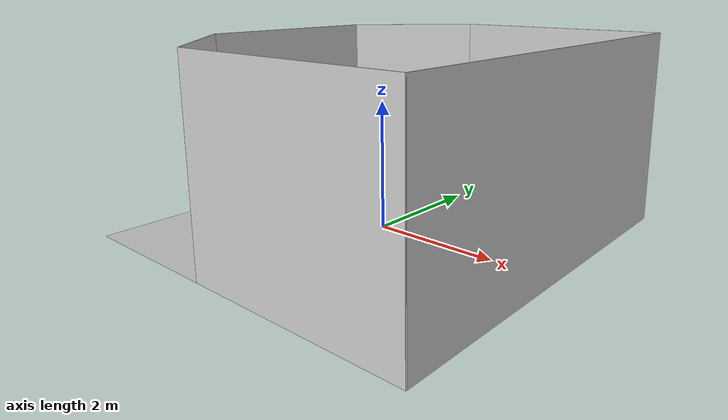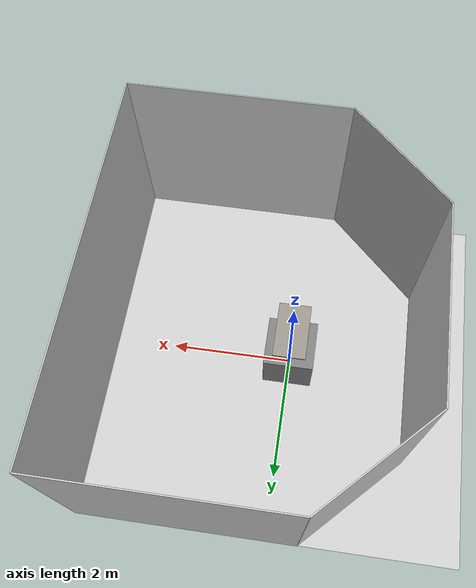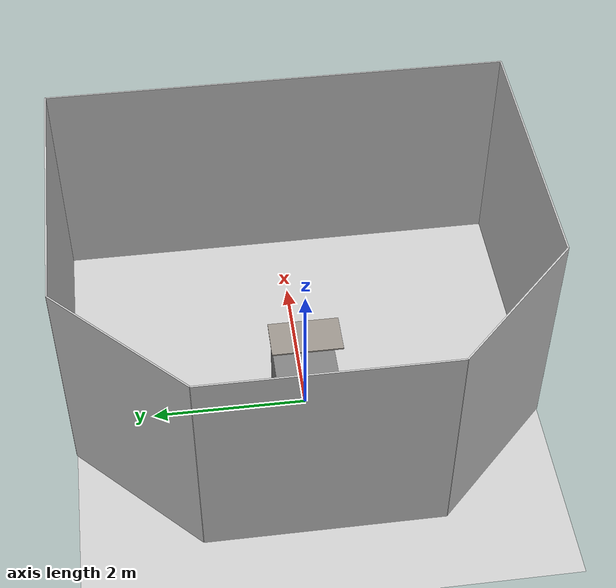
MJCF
<mujoco model="narrow_gap_arena">
    <asset>
        <!-- Room and table textures -->
        <texture builtin="gradient" height="256" rgb1=".9 .9 1." rgb2=".2 .3 .4" type="skybox" width="256"/>
        <texture file="../models/assets/textures/light-gray-floor-tile.png" type="2d" name="texplane"/>
        <material name="floorplane" reflectance="0.01" shininess="0.0" specular="0.0" texrepeat="2 2" texture="texplane" texuniform="true"/>
        <!-- ceramic table texture and material-->
        <texture file="../models/assets/textures/ceramic.png" type="cube" name="tex-ceramic"/>
        <material name="table_ceramic" reflectance="0.0" shininess="0.0" specular="0.2" texrepeat="1 1" texture="tex-ceramic" />
        <!-- steel legs -->
        <texture file="../models/assets/textures/steel-brushed.png" type="cube" name="tex-steel-brushed"/>
        <material name="table_legs_metal" reflectance="0.8" shininess="0.8" texrepeat="1 1" texture="tex-steel-brushed" />
        <!-- plaster walls -->
        <texture file="../models/assets/textures/light-gray-plaster.png" type="2d" name="tex-light-gray-plaster"/>
        <material name="walls_mat" reflectance="0.0" shininess="0.1" specular="0.1" texrepeat="3 3" texture="tex-light-gray-plaster" texuniform="true" />
        <!-- added table texture and material for domain randomization -->
        <texture  name="textable" builtin="flat" height="512" width="512" rgb1="0.5 0.5 0.5" rgb2="0.5 0.5 0.5"/>
        <material name="table_mat" texture="textable" />
        <!-- Cube and shelf textures -->
        <texture file="../models/assets/textures/metal.png" type="cube" name="metal" />
        <material name="MatMetal" texture="metal" specular="1" shininess="0.3" rgba="0.8 0.8 0.8 1" />
        <material name="MatClearMetal" texture="metal" specular="0.4" shininess="0.1" rgba="0.8 0.8 0.8 0.5"/>
    </asset>

    <worldbody>
        <!-- Floor -->
        <geom condim="3" group="1" material="floorplane" name="floor" pos="0 0 0" size="3 3 .125" type="plane"/>
        <!-- Walls (visual only) -->
        <geom pos="-1.25 2.25 1.5" quat="0.6532815 0.6532815 0.2705981 0.2705981" size="1.06 1.5 0.01" type="box" conaffinity="0" contype="0" group="1" name="wall_leftcorner_visual" material="walls_mat"/>
        <geom pos="-1.25 -2.25 1.5" quat="0.6532815 0.6532815 -0.2705981 -0.2705981" size="1.06 1.5 0.01" type="box" conaffinity="0" contype="0" group="1" name="wall_rightcorner_visual" material="walls_mat"/>
        <geom pos="1.25 3 1.5" quat="0.7071 0.7071 0 0" size="1.75 1.5 0.01" type="box" conaffinity="0" contype="0" group="1" name="wall_left_visual" material="walls_mat"/>
        <geom pos="1.25 -3 1.5" quat="0.7071 -0.7071 0 0" size="1.75 1.5 0.01" type="box" conaffinity="0" contype="0" group="1" name="wall_right_visual" material="walls_mat"/>
        <geom pos="-2 0 1.5" quat="0.5 0.5 0.5 0.5" size="1.5 1.5 0.01" type="box" conaffinity="0" contype="0" group="1" name="wall_rear_visual" material="walls_mat"/>
        <geom pos="3 0 1.5" quat="0.5 0.5 -0.5 -0.5" size="3 1.5 0.01" type="box" conaffinity="0" contype="0" group="1" name="wall_front_visual" material="walls_mat"/>
        <!-- Table body -->
        <body name="table" pos="0 0 0.4">
            <geom pos="0 0 0" size="0.4 0.4 0.4" type="box" group="0" name="table_collision" friction="0.5 0.005 0.0001"/>
            <geom pos="0 0 0" size="0.4 0.4 0.4" type="box" conaffinity="0" contype="0" group="1" name="table_visual" material="table_ceramic"/>
            <site pos="0 0 0.4" name="table_top" size="0.001 0.001 0.001" rgba="0 0 0 0"/>
            <!-- Legs (visual only) -->
            <geom pos="0 0 0" size="0.05 0.1" type="cylinder" conaffinity="0" contype="0" group="1" name="table_leg1_visual" material="table_legs_metal"/>
            <geom pos="0 0 0" size="0.05 0.1" type="cylinder" conaffinity="0" contype="0" group="1" name="table_leg2_visual" material="table_legs_metal"/>
            <geom pos="0 0 0" size="0.05 0.1" type="cylinder" conaffinity="0" contype="0" group="1" name="table_leg3_visual" material="table_legs_metal"/>
            <geom pos="0 0 0" size="0.05 0.1" type="cylinder" conaffinity="0" contype="0" group="1" name="table_leg4_visual" material="table_legs_metal"/>
        </body>
        <!-- Blocks for gap -->
        <geom name="left_block" type="box" size="0.25 0.10 0.2" pos="0.15 -0.25 0.5" material="MatMetal" group="1"/>
        <geom name="right_block" type="box" size="0.25 0.10 0.2" pos="0.15 0.25 0.5" material="MatMetal" group="1"/>
        <!-- Shelf above blocks for pot placement -->
        <geom name="shelf" type="box" size="0.255 0.45 0.01" pos="0.0 0 1.3" material="MatMetal" group="1" friction="0.5 0.005 0.0001"/>

        <!-- Lighting and Cameras -->
        <light pos="1.0 1.0 1.5" dir="-0.2 -0.2 -1" specular="0.3 0.3 0.3" directional="true" castshadow="true"/>
        <!-- front view -->
        <camera mode="fixed" name="frontview" pos="1.6 0 1.45" quat="0.56 0.43 0.43 0.56"/>
        <!-- bird view -->
        <camera mode="fixed" name="birdview" pos="-0.2 0 3.0" quat="0.7071 0 0 0.7071"/>
        <!-- agent view -->
        <camera mode="fixed" name="agentview" pos="1.0 0 1.75" quat="0.653 0.271 0.271 0.653"/>
    </worldbody>
</mujoco>
